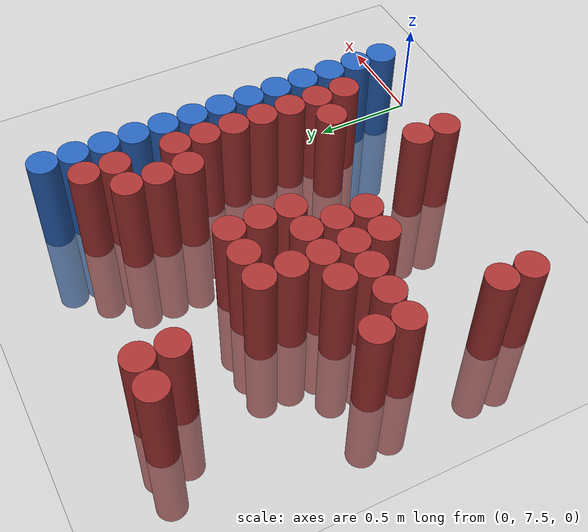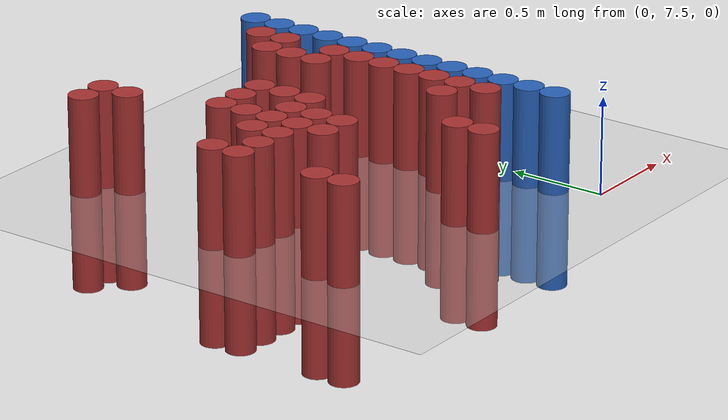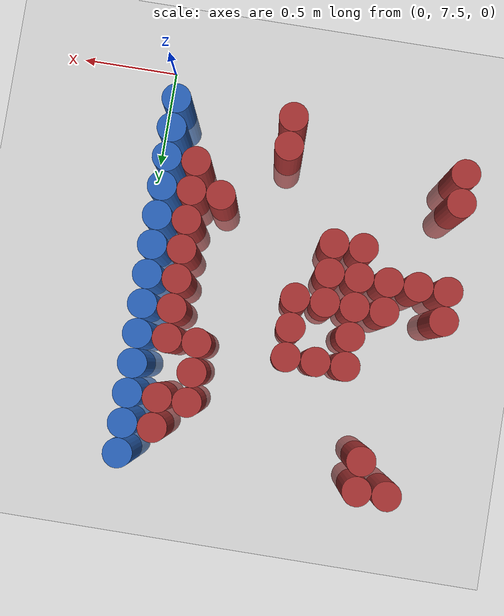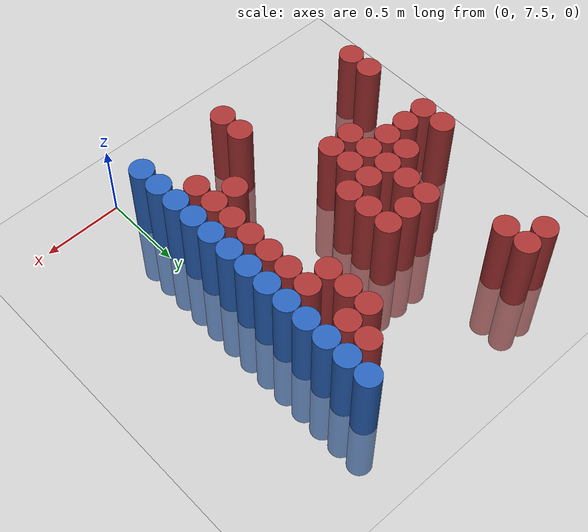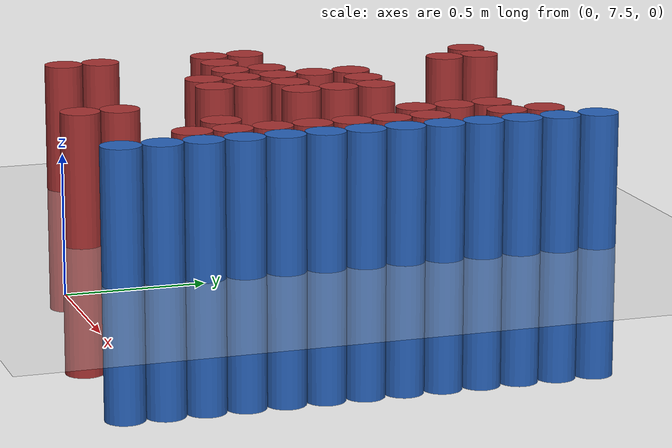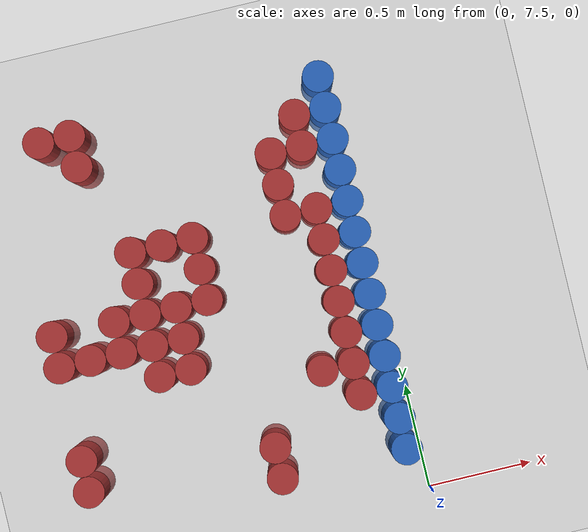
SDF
<sdf version="1.6">
 <world name="default">
  <model name="ground_plane">
   <static>1</static>
   <link name="link">
    <collision name="collision">
     <geometry><plane><normal>0 0 1</normal><size>100 100</size></plane></geometry>
     <surface><friction><ode><mu>100</mu><mu2>50</mu2></ode></friction></surface>
    </collision>
    <visual name="visual">
     <cast_shadows>0</cast_shadows>
     <geometry><plane><normal>0 0 1</normal><size>100 100</size></plane></geometry>
     <material>
      <script><uri>file://media/materials/scripts/gazebo.material</uri><name>Gazebo/Grey</name></script>
     </material>
    </visual>
   </link>
  </model>
  <model name="unit_cylinder_228">
   <static>1</static>
   <pose>-1.575000 7.875000 0.000000 0.000000 0.000000 0.000000</pose>
   <link name="link">
    <inertial>
     <mass>1</mass>
     <inertia><ixx>0.145833</ixx><ixy>0</ixy><ixz>0</ixz><iyy>0.145833</iyy><iyz>0</iyz><izz>0.125</izz></inertia>
    </inertial>
    <collision name="collision">
     <geometry><cylinder><radius>0.075000</radius><length>1</length></cylinder></geometry>
    </collision>
    <visual name="visual">
     <geometry><cylinder><radius>0.075000</radius><length>1</length></cylinder></geometry>
     <material>
      <ambient>0.648000 0.192000 0.192000 1</ambient>
      <diffuse>0.648000 0.192000 0.192000 1</diffuse>
     </material>
     <material>
      <script><name>Gazebo/Grey</name><uri>file://media/materials/scripts/gazebo.material</uri></script>
     </material>
    </visual>
   </link>
  </model>
  <model name="unit_cylinder_229">
   <static>1</static>
   <pose>-1.575000 8.025000 0.000000 0.000000 0.000000 0.000000</pose>
   <link name="link">
    <inertial>
     <mass>1</mass>
     <inertia><ixx>0.145833</ixx><ixy>0</ixy><ixz>0</ixz><iyy>0.145833</iyy><iyz>0</iyz><izz>0.125</izz></inertia>
    </inertial>
    <collision name="collision">
     <geometry><cylinder><radius>0.075000</radius><length>1</length></cylinder></geometry>
    </collision>
    <visual name="visual">
     <geometry><cylinder><radius>0.075000</radius><length>1</length></cylinder></geometry>
     <material>
      <ambient>0.648000 0.192000 0.192000 1</ambient>
      <diffuse>0.648000 0.192000 0.192000 1</diffuse>
     </material>
     <material>
      <script><name>Gazebo/Grey</name><uri>file://media/materials/scripts/gazebo.material</uri></script>
     </material>
    </visual>
   </link>
  </model>
  <model name="unit_cylinder_230">
   <static>1</static>
   <pose>-1.575000 8.475000 0.000000 0.000000 0.000000 0.000000</pose>
   <link name="link">
    <inertial>
     <mass>1</mass>
     <inertia><ixx>0.145833</ixx><ixy>0</ixy><ixz>0</ixz><iyy>0.145833</iyy><iyz>0</iyz><izz>0.125</izz></inertia>
    </inertial>
    <collision name="collision">
     <geometry><cylinder><radius>0.075000</radius><length>1</length></cylinder></geometry>
    </collision>
    <visual name="visual">
     <geometry><cylinder><radius>0.075000</radius><length>1</length></cylinder></geometry>
     <material>
      <ambient>0.648000 0.192000 0.192000 1</ambient>
      <diffuse>0.648000 0.192000 0.192000 1</diffuse>
     </material>
     <material>
      <script><name>Gazebo/Grey</name><uri>file://media/materials/scripts/gazebo.material</uri></script>
     </material>
    </visual>
   </link>
  </model>
  <model name="unit_cylinder_231">
   <static>1</static>
   <pose>-1.575000 8.625000 0.000000 0.000000 0.000000 0.000000</pose>
   <link name="link">
    <inertial>
     <mass>1</mass>
     <inertia><ixx>0.145833</ixx><ixy>0</ixy><ixz>0</ixz><iyy>0.145833</iyy><iyz>0</iyz><izz>0.125</izz></inertia>
    </inertial>
    <collision name="collision">
     <geometry><cylinder><radius>0.075000</radius><length>1</length></cylinder></geometry>
    </collision>
    <visual name="visual">
     <geometry><cylinder><radius>0.075000</radius><length>1</length></cylinder></geometry>
     <material>
      <ambient>0.648000 0.192000 0.192000 1</ambient>
      <diffuse>0.648000 0.192000 0.192000 1</diffuse>
     </material>
     <material>
      <script><name>Gazebo/Grey</name><uri>file://media/materials/scripts/gazebo.material</uri></script>
     </material>
    </visual>
   </link>
  </model>
  <model name="unit_cylinder_236">
   <static>1</static>
   <pose>-1.425000 8.475000 0.000000 0.000000 0.000000 0.000000</pose>
   <link name="link">
    <inertial>
     <mass>1</mass>
     <inertia><ixx>0.145833</ixx><ixy>0</ixy><ixz>0</ixz><iyy>0.145833</iyy><iyz>0</iyz><izz>0.125</izz></inertia>
    </inertial>
    <collision name="collision">
     <geometry><cylinder><radius>0.075000</radius><length>1</length></cylinder></geometry>
    </collision>
    <visual name="visual">
     <geometry><cylinder><radius>0.075000</radius><length>1</length></cylinder></geometry>
     <material>
      <ambient>0.648000 0.192000 0.192000 1</ambient>
      <diffuse>0.648000 0.192000 0.192000 1</diffuse>
     </material>
     <material>
      <script><name>Gazebo/Grey</name><uri>file://media/materials/scripts/gazebo.material</uri></script>
     </material>
    </visual>
   </link>
  </model>
  <model name="unit_cylinder_237">
   <static>1</static>
   <pose>-1.425000 9.525000 0.000000 0.000000 0.000000 0.000000</pose>
   <link name="link">
    <inertial>
     <mass>1</mass>
     <inertia><ixx>0.145833</ixx><ixy>0</ixy><ixz>0</ixz><iyy>0.145833</iyy><iyz>0</iyz><izz>0.125</izz></inertia>
    </inertial>
    <collision name="collision">
     <geometry><cylinder><radius>0.075000</radius><length>1</length></cylinder></geometry>
    </collision>
    <visual name="visual">
     <geometry><cylinder><radius>0.075000</radius><length>1</length></cylinder></geometry>
     <material>
      <ambient>0.648000 0.192000 0.192000 1</ambient>
      <diffuse>0.648000 0.192000 0.192000 1</diffuse>
     </material>
     <material>
      <script><name>Gazebo/Grey</name><uri>file://media/materials/scripts/gazebo.material</uri></script>
     </material>
    </visual>
   </link>
  </model>
  <model name="unit_cylinder_242">
   <static>1</static>
   <pose>-1.275000 8.475000 0.000000 0.000000 0.000000 0.000000</pose>
   <link name="link">
    <inertial>
     <mass>1</mass>
     <inertia><ixx>0.145833</ixx><ixy>0</ixy><ixz>0</ixz><iyy>0.145833</iyy><iyz>0</iyz><izz>0.125</izz></inertia>
    </inertial>
    <collision name="collision">
     <geometry><cylinder><radius>0.075000</radius><length>1</length></cylinder></geometry>
    </collision>
    <visual name="visual">
     <geometry><cylinder><radius>0.075000</radius><length>1</length></cylinder></geometry>
     <material>
      <ambient>0.648000 0.192000 0.192000 1</ambient>
      <diffuse>0.648000 0.192000 0.192000 1</diffuse>
     </material>
     <material>
      <script><name>Gazebo/Grey</name><uri>file://media/materials/scripts/gazebo.material</uri></script>
     </material>
    </visual>
   </link>
  </model>
  <model name="unit_cylinder_243">
   <static>1</static>
   <pose>-1.275000 8.625000 0.000000 0.000000 0.000000 0.000000</pose>
   <link name="link">
    <inertial>
     <mass>1</mass>
     <inertia><ixx>0.145833</ixx><ixy>0</ixy><ixz>0</ixz><iyy>0.145833</iyy><iyz>0</iyz><izz>0.125</izz></inertia>
    </inertial>
    <collision name="collision">
     <geometry><cylinder><radius>0.075000</radius><length>1</length></cylinder></geometry>
    </collision>
    <visual name="visual">
     <geometry><cylinder><radius>0.075000</radius><length>1</length></cylinder></geometry>
     <material>
      <ambient>0.648000 0.192000 0.192000 1</ambient>
      <diffuse>0.648000 0.192000 0.192000 1</diffuse>
     </material>
     <material>
      <script><name>Gazebo/Grey</name><uri>file://media/materials/scripts/gazebo.material</uri></script>
     </material>
    </visual>
   </link>
  </model>
  <model name="unit_cylinder_244">
   <static>1</static>
   <pose>-1.275000 9.375000 0.000000 0.000000 0.000000 0.000000</pose>
   <link name="link">
    <inertial>
     <mass>1</mass>
     <inertia><ixx>0.145833</ixx><ixy>0</ixy><ixz>0</ixz><iyy>0.145833</iyy><iyz>0</iyz><izz>0.125</izz></inertia>
    </inertial>
    <collision name="collision">
     <geometry><cylinder><radius>0.075000</radius><length>1</length></cylinder></geometry>
    </collision>
    <visual name="visual">
     <geometry><cylinder><radius>0.075000</radius><length>1</length></cylinder></geometry>
     <material>
      <ambient>0.648000 0.192000 0.192000 1</ambient>
      <diffuse>0.648000 0.192000 0.192000 1</diffuse>
     </material>
     <material>
      <script><name>Gazebo/Grey</name><uri>file://media/materials/scripts/gazebo.material</uri></script>
     </material>
    </visual>
   </link>
  </model>
  <model name="unit_cylinder_245">
   <static>1</static>
   <pose>-1.275000 9.525000 0.000000 0.000000 0.000000 0.000000</pose>
   <link name="link">
    <inertial>
     <mass>1</mass>
     <inertia><ixx>0.145833</ixx><ixy>0</ixy><ixz>0</ixz><iyy>0.145833</iyy><iyz>0</iyz><izz>0.125</izz></inertia>
    </inertial>
    <collision name="collision">
     <geometry><cylinder><radius>0.075000</radius><length>1</length></cylinder></geometry>
    </collision>
    <visual name="visual">
     <geometry><cylinder><radius>0.075000</radius><length>1</length></cylinder></geometry>
     <material>
      <ambient>0.648000 0.192000 0.192000 1</ambient>
      <diffuse>0.648000 0.192000 0.192000 1</diffuse>
     </material>
     <material>
      <script><name>Gazebo/Grey</name><uri>file://media/materials/scripts/gazebo.material</uri></script>
     </material>
    </visual>
   </link>
  </model>
  <model name="unit_cylinder_252">
   <static>1</static>
   <pose>-1.125000 8.325000 0.000000 0.000000 0.000000 0.000000</pose>
   <link name="link">
    <inertial>
     <mass>1</mass>
     <inertia><ixx>0.145833</ixx><ixy>0</ixy><ixz>0</ixz><iyy>0.145833</iyy><iyz>0</iyz><izz>0.125</izz></inertia>
    </inertial>
    <collision name="collision">
     <geometry><cylinder><radius>0.075000</radius><length>1</length></cylinder></geometry>
    </collision>
    <visual name="visual">
     <geometry><cylinder><radius>0.075000</radius><length>1</length></cylinder></geometry>
     <material>
      <ambient>0.648000 0.192000 0.192000 1</ambient>
      <diffuse>0.648000 0.192000 0.192000 1</diffuse>
     </material>
     <material>
      <script><name>Gazebo/Grey</name><uri>file://media/materials/scripts/gazebo.material</uri></script>
     </material>
    </visual>
   </link>
  </model>
  <model name="unit_cylinder_253">
   <static>1</static>
   <pose>-1.125000 8.475000 0.000000 0.000000 0.000000 0.000000</pose>
   <link name="link">
    <inertial>
     <mass>1</mass>
     <inertia><ixx>0.145833</ixx><ixy>0</ixy><ixz>0</ixz><iyy>0.145833</iyy><iyz>0</iyz><izz>0.125</izz></inertia>
    </inertial>
    <collision name="collision">
     <geometry><cylinder><radius>0.075000</radius><length>1</length></cylinder></geometry>
    </collision>
    <visual name="visual">
     <geometry><cylinder><radius>0.075000</radius><length>1</length></cylinder></geometry>
     <material>
      <ambient>0.648000 0.192000 0.192000 1</ambient>
      <diffuse>0.648000 0.192000 0.192000 1</diffuse>
     </material>
     <material>
      <script><name>Gazebo/Grey</name><uri>file://media/materials/scripts/gazebo.material</uri></script>
     </material>
    </visual>
   </link>
  </model>
  <model name="unit_cylinder_254">
   <static>1</static>
   <pose>-1.125000 8.625000 0.000000 0.000000 0.000000 0.000000</pose>
   <link name="link">
    <inertial>
     <mass>1</mass>
     <inertia><ixx>0.145833</ixx><ixy>0</ixy><ixz>0</ixz><iyy>0.145833</iyy><iyz>0</iyz><izz>0.125</izz></inertia>
    </inertial>
    <collision name="collision">
     <geometry><cylinder><radius>0.075000</radius><length>1</length></cylinder></geometry>
    </collision>
    <visual name="visual">
     <geometry><cylinder><radius>0.075000</radius><length>1</length></cylinder></geometry>
     <material>
      <ambient>0.648000 0.192000 0.192000 1</ambient>
      <diffuse>0.648000 0.192000 0.192000 1</diffuse>
     </material>
     <material>
      <script><name>Gazebo/Grey</name><uri>file://media/materials/scripts/gazebo.material</uri></script>
     </material>
    </visual>
   </link>
  </model>
  <model name="unit_cylinder_255">
   <static>1</static>
   <pose>-1.125000 8.775000 0.000000 0.000000 0.000000 0.000000</pose>
   <link name="link">
    <inertial>
     <mass>1</mass>
     <inertia><ixx>0.145833</ixx><ixy>0</ixy><ixz>0</ixz><iyy>0.145833</iyy><iyz>0</iyz><izz>0.125</izz></inertia>
    </inertial>
    <collision name="collision">
     <geometry><cylinder><radius>0.075000</radius><length>1</length></cylinder></geometry>
    </collision>
    <visual name="visual">
     <geometry><cylinder><radius>0.075000</radius><length>1</length></cylinder></geometry>
     <material>
      <ambient>0.648000 0.192000 0.192000 1</ambient>
      <diffuse>0.648000 0.192000 0.192000 1</diffuse>
     </material>
     <material>
      <script><name>Gazebo/Grey</name><uri>file://media/materials/scripts/gazebo.material</uri></script>
     </material>
    </visual>
   </link>
  </model>
  <model name="unit_cylinder_256">
   <static>1</static>
   <pose>-1.125000 8.925000 0.000000 0.000000 0.000000 0.000000</pose>
   <link name="link">
    <inertial>
     <mass>1</mass>
     <inertia><ixx>0.145833</ixx><ixy>0</ixy><ixz>0</ixz><iyy>0.145833</iyy><iyz>0</iyz><izz>0.125</izz></inertia>
    </inertial>
    <collision name="collision">
     <geometry><cylinder><radius>0.075000</radius><length>1</length></cylinder></geometry>
    </collision>
    <visual name="visual">
     <geometry><cylinder><radius>0.075000</radius><length>1</length></cylinder></geometry>
     <material>
      <ambient>0.648000 0.192000 0.192000 1</ambient>
      <diffuse>0.648000 0.192000 0.192000 1</diffuse>
     </material>
     <material>
      <script><name>Gazebo/Grey</name><uri>file://media/materials/scripts/gazebo.material</uri></script>
     </material>
    </visual>
   </link>
  </model>
  <model name="unit_cylinder_267">
   <static>1</static>
   <pose>-0.975000 8.325000 0.000000 0.000000 0.000000 0.000000</pose>
   <link name="link">
    <inertial>
     <mass>1</mass>
     <inertia><ixx>0.145833</ixx><ixy>0</ixy><ixz>0</ixz><iyy>0.145833</iyy><iyz>0</iyz><izz>0.125</izz></inertia>
    </inertial>
    <collision name="collision">
     <geometry><cylinder><radius>0.075000</radius><length>1</length></cylinder></geometry>
    </collision>
    <visual name="visual">
     <geometry><cylinder><radius>0.075000</radius><length>1</length></cylinder></geometry>
     <material>
      <ambient>0.648000 0.192000 0.192000 1</ambient>
      <diffuse>0.648000 0.192000 0.192000 1</diffuse>
     </material>
     <material>
      <script><name>Gazebo/Grey</name><uri>file://media/materials/scripts/gazebo.material</uri></script>
     </material>
    </visual>
   </link>
  </model>
  <model name="unit_cylinder_268">
   <static>1</static>
   <pose>-0.975000 8.475000 0.000000 0.000000 0.000000 0.000000</pose>
   <link name="link">
    <inertial>
     <mass>1</mass>
     <inertia><ixx>0.145833</ixx><ixy>0</ixy><ixz>0</ixz><iyy>0.145833</iyy><iyz>0</iyz><izz>0.125</izz></inertia>
    </inertial>
    <collision name="collision">
     <geometry><cylinder><radius>0.075000</radius><length>1</length></cylinder></geometry>
    </collision>
    <visual name="visual">
     <geometry><cylinder><radius>0.075000</radius><length>1</length></cylinder></geometry>
     <material>
      <ambient>0.648000 0.192000 0.192000 1</ambient>
      <diffuse>0.648000 0.192000 0.192000 1</diffuse>
     </material>
     <material>
      <script><name>Gazebo/Grey</name><uri>file://media/materials/scripts/gazebo.material</uri></script>
     </material>
    </visual>
   </link>
  </model>
  <model name="unit_cylinder_269">
   <static>1</static>
   <pose>-0.975000 8.625000 0.000000 0.000000 0.000000 0.000000</pose>
   <link name="link">
    <inertial>
     <mass>1</mass>
     <inertia><ixx>0.145833</ixx><ixy>0</ixy><ixz>0</ixz><iyy>0.145833</iyy><iyz>0</iyz><izz>0.125</izz></inertia>
    </inertial>
    <collision name="collision">
     <geometry><cylinder><radius>0.075000</radius><length>1</length></cylinder></geometry>
    </collision>
    <visual name="visual">
     <geometry><cylinder><radius>0.075000</radius><length>1</length></cylinder></geometry>
     <material>
      <ambient>0.648000 0.192000 0.192000 1</ambient>
      <diffuse>0.648000 0.192000 0.192000 1</diffuse>
     </material>
     <material>
      <script><name>Gazebo/Grey</name><uri>file://media/materials/scripts/gazebo.material</uri></script>
     </material>
    </visual>
   </link>
  </model>
  <model name="unit_cylinder_270">
   <static>1</static>
   <pose>-0.975000 8.925000 0.000000 0.000000 0.000000 0.000000</pose>
   <link name="link">
    <inertial>
     <mass>1</mass>
     <inertia><ixx>0.145833</ixx><ixy>0</ixy><ixz>0</ixz><iyy>0.145833</iyy><iyz>0</iyz><izz>0.125</izz></inertia>
    </inertial>
    <collision name="collision">
     <geometry><cylinder><radius>0.075000</radius><length>1</length></cylinder></geometry>
    </collision>
    <visual name="visual">
     <geometry><cylinder><radius>0.075000</radius><length>1</length></cylinder></geometry>
     <material>
      <ambient>0.648000 0.192000 0.192000 1</ambient>
      <diffuse>0.648000 0.192000 0.192000 1</diffuse>
     </material>
     <material>
      <script><name>Gazebo/Grey</name><uri>file://media/materials/scripts/gazebo.material</uri></script>
     </material>
    </visual>
   </link>
  </model>
  <model name="unit_cylinder_278">
   <static>1</static>
   <pose>-0.825000 8.625000 0.000000 0.000000 0.000000 0.000000</pose>
   <link name="link">
    <inertial>
     <mass>1</mass>
     <inertia><ixx>0.145833</ixx><ixy>0</ixy><ixz>0</ixz><iyy>0.145833</iyy><iyz>0</iyz><izz>0.125</izz></inertia>
    </inertial>
    <collision name="collision">
     <geometry><cylinder><radius>0.075000</radius><length>1</length></cylinder></geometry>
    </collision>
    <visual name="visual">
     <geometry><cylinder><radius>0.075000</radius><length>1</length></cylinder></geometry>
     <material>
      <ambient>0.648000 0.192000 0.192000 1</ambient>
      <diffuse>0.648000 0.192000 0.192000 1</diffuse>
     </material>
     <material>
      <script><name>Gazebo/Grey</name><uri>file://media/materials/scripts/gazebo.material</uri></script>
     </material>
    </visual>
   </link>
  </model>
  <model name="unit_cylinder_279">
   <static>1</static>
   <pose>-0.825000 8.775000 0.000000 0.000000 0.000000 0.000000</pose>
   <link name="link">
    <inertial>
     <mass>1</mass>
     <inertia><ixx>0.145833</ixx><ixy>0</ixy><ixz>0</ixz><iyy>0.145833</iyy><iyz>0</iyz><izz>0.125</izz></inertia>
    </inertial>
    <collision name="collision">
     <geometry><cylinder><radius>0.075000</radius><length>1</length></cylinder></geometry>
    </collision>
    <visual name="visual">
     <geometry><cylinder><radius>0.075000</radius><length>1</length></cylinder></geometry>
     <material>
      <ambient>0.648000 0.192000 0.192000 1</ambient>
      <diffuse>0.648000 0.192000 0.192000 1</diffuse>
     </material>
     <material>
      <script><name>Gazebo/Grey</name><uri>file://media/materials/scripts/gazebo.material</uri></script>
     </material>
    </visual>
   </link>
  </model>
  <model name="unit_cylinder_280">
   <static>1</static>
   <pose>-0.825000 8.925000 0.000000 0.000000 0.000000 0.000000</pose>
   <link name="link">
    <inertial>
     <mass>1</mass>
     <inertia><ixx>0.145833</ixx><ixy>0</ixy><ixz>0</ixz><iyy>0.145833</iyy><iyz>0</iyz><izz>0.125</izz></inertia>
    </inertial>
    <collision name="collision">
     <geometry><cylinder><radius>0.075000</radius><length>1</length></cylinder></geometry>
    </collision>
    <visual name="visual">
     <geometry><cylinder><radius>0.075000</radius><length>1</length></cylinder></geometry>
     <material>
      <ambient>0.648000 0.192000 0.192000 1</ambient>
      <diffuse>0.648000 0.192000 0.192000 1</diffuse>
     </material>
     <material>
      <script><name>Gazebo/Grey</name><uri>file://media/materials/scripts/gazebo.material</uri></script>
     </material>
    </visual>
   </link>
  </model>
  <model name="unit_cylinder_287">
   <static>1</static>
   <pose>-0.675000 7.725000 0.000000 0.000000 0.000000 0.000000</pose>
   <link name="link">
    <inertial>
     <mass>1</mass>
     <inertia><ixx>0.145833</ixx><ixy>0</ixy><ixz>0</ixz><iyy>0.145833</iyy><iyz>0</iyz><izz>0.125</izz></inertia>
    </inertial>
    <collision name="collision">
     <geometry><cylinder><radius>0.075000</radius><length>1</length></cylinder></geometry>
    </collision>
    <visual name="visual">
     <geometry><cylinder><radius>0.075000</radius><length>1</length></cylinder></geometry>
     <material>
      <ambient>0.648000 0.192000 0.192000 1</ambient>
      <diffuse>0.648000 0.192000 0.192000 1</diffuse>
     </material>
     <material>
      <script><name>Gazebo/Grey</name><uri>file://media/materials/scripts/gazebo.material</uri></script>
     </material>
    </visual>
   </link>
  </model>
  <model name="unit_cylinder_288">
   <static>1</static>
   <pose>-0.675000 7.875000 0.000000 0.000000 0.000000 0.000000</pose>
   <link name="link">
    <inertial>
     <mass>1</mass>
     <inertia><ixx>0.145833</ixx><ixy>0</ixy><ixz>0</ixz><iyy>0.145833</iyy><iyz>0</iyz><izz>0.125</izz></inertia>
    </inertial>
    <collision name="collision">
     <geometry><cylinder><radius>0.075000</radius><length>1</length></cylinder></geometry>
    </collision>
    <visual name="visual">
     <geometry><cylinder><radius>0.075000</radius><length>1</length></cylinder></geometry>
     <material>
      <ambient>0.648000 0.192000 0.192000 1</ambient>
      <diffuse>0.648000 0.192000 0.192000 1</diffuse>
     </material>
     <material>
      <script><name>Gazebo/Grey</name><uri>file://media/materials/scripts/gazebo.material</uri></script>
     </material>
    </visual>
   </link>
  </model>
  <model name="unit_cylinder_296">
   <static>1</static>
   <pose>-0.375000 8.175000 0.000000 0.000000 0.000000 0.000000</pose>
   <link name="link">
    <inertial>
     <mass>1</mass>
     <inertia><ixx>0.145833</ixx><ixy>0</ixy><ixz>0</ixz><iyy>0.145833</iyy><iyz>0</iyz><izz>0.125</izz></inertia>
    </inertial>
    <collision name="collision">
     <geometry><cylinder><radius>0.075000</radius><length>1</length></cylinder></geometry>
    </collision>
    <visual name="visual">
     <geometry><cylinder><radius>0.075000</radius><length>1</length></cylinder></geometry>
     <material>
      <ambient>0.648000 0.192000 0.192000 1</ambient>
      <diffuse>0.648000 0.192000 0.192000 1</diffuse>
     </material>
     <material>
      <script><name>Gazebo/Grey</name><uri>file://media/materials/scripts/gazebo.material</uri></script>
     </material>
    </visual>
   </link>
  </model>
  <model name="unit_cylinder_297">
   <static>1</static>
   <pose>-0.375000 8.925000 0.000000 0.000000 0.000000 0.000000</pose>
   <link name="link">
    <inertial>
     <mass>1</mass>
     <inertia><ixx>0.145833</ixx><ixy>0</ixy><ixz>0</ixz><iyy>0.145833</iyy><iyz>0</iyz><izz>0.125</izz></inertia>
    </inertial>
    <collision name="collision">
     <geometry><cylinder><radius>0.075000</radius><length>1</length></cylinder></geometry>
    </collision>
    <visual name="visual">
     <geometry><cylinder><radius>0.075000</radius><length>1</length></cylinder></geometry>
     <material>
      <ambient>0.648000 0.192000 0.192000 1</ambient>
      <diffuse>0.648000 0.192000 0.192000 1</diffuse>
     </material>
     <material>
      <script><name>Gazebo/Grey</name><uri>file://media/materials/scripts/gazebo.material</uri></script>
     </material>
    </visual>
   </link>
  </model>
  <model name="unit_cylinder_298">
   <static>1</static>
   <pose>-0.375000 9.075000 0.000000 0.000000 0.000000 0.000000</pose>
   <link name="link">
    <inertial>
     <mass>1</mass>
     <inertia><ixx>0.145833</ixx><ixy>0</ixy><ixz>0</ixz><iyy>0.145833</iyy><iyz>0</iyz><izz>0.125</izz></inertia>
    </inertial>
    <collision name="collision">
     <geometry><cylinder><radius>0.075000</radius><length>1</length></cylinder></geometry>
    </collision>
    <visual name="visual">
     <geometry><cylinder><radius>0.075000</radius><length>1</length></cylinder></geometry>
     <material>
      <ambient>0.648000 0.192000 0.192000 1</ambient>
      <diffuse>0.648000 0.192000 0.192000 1</diffuse>
     </material>
     <material>
      <script><name>Gazebo/Grey</name><uri>file://media/materials/scripts/gazebo.material</uri></script>
     </material>
    </visual>
   </link>
  </model>
  <model name="unit_cylinder_299">
   <static>1</static>
   <pose>-0.375000 9.225000 0.000000 0.000000 0.000000 0.000000</pose>
   <link name="link">
    <inertial>
     <mass>1</mass>
     <inertia><ixx>0.145833</ixx><ixy>0</ixy><ixz>0</ixz><iyy>0.145833</iyy><iyz>0</iyz><izz>0.125</izz></inertia>
    </inertial>
    <collision name="collision">
     <geometry><cylinder><radius>0.075000</radius><length>1</length></cylinder></geometry>
    </collision>
    <visual name="visual">
     <geometry><cylinder><radius>0.075000</radius><length>1</length></cylinder></geometry>
     <material>
      <ambient>0.648000 0.192000 0.192000 1</ambient>
      <diffuse>0.648000 0.192000 0.192000 1</diffuse>
     </material>
     <material>
      <script><name>Gazebo/Grey</name><uri>file://media/materials/scripts/gazebo.material</uri></script>
     </material>
    </visual>
   </link>
  </model>
  <model name="unit_cylinder_311">
   <static>1</static>
   <pose>-0.225000 8.025000 0.000000 0.000000 0.000000 0.000000</pose>
   <link name="link">
    <inertial>
     <mass>1</mass>
     <inertia><ixx>0.145833</ixx><ixy>0</ixy><ixz>0</ixz><iyy>0.145833</iyy><iyz>0</iyz><izz>0.125</izz></inertia>
    </inertial>
    <collision name="collision">
     <geometry><cylinder><radius>0.075000</radius><length>1</length></cylinder></geometry>
    </collision>
    <visual name="visual">
     <geometry><cylinder><radius>0.075000</radius><length>1</length></cylinder></geometry>
     <material>
      <ambient>0.648000 0.192000 0.192000 1</ambient>
      <diffuse>0.648000 0.192000 0.192000 1</diffuse>
     </material>
     <material>
      <script><name>Gazebo/Grey</name><uri>file://media/materials/scripts/gazebo.material</uri></script>
     </material>
    </visual>
   </link>
  </model>
  <model name="unit_cylinder_312">
   <static>1</static>
   <pose>-0.225000 8.175000 0.000000 0.000000 0.000000 0.000000</pose>
   <link name="link">
    <inertial>
     <mass>1</mass>
     <inertia><ixx>0.145833</ixx><ixy>0</ixy><ixz>0</ixz><iyy>0.145833</iyy><iyz>0</iyz><izz>0.125</izz></inertia>
    </inertial>
    <collision name="collision">
     <geometry><cylinder><radius>0.075000</radius><length>1</length></cylinder></geometry>
    </collision>
    <visual name="visual">
     <geometry><cylinder><radius>0.075000</radius><length>1</length></cylinder></geometry>
     <material>
      <ambient>0.648000 0.192000 0.192000 1</ambient>
      <diffuse>0.648000 0.192000 0.192000 1</diffuse>
     </material>
     <material>
      <script><name>Gazebo/Grey</name><uri>file://media/materials/scripts/gazebo.material</uri></script>
     </material>
    </visual>
   </link>
  </model>
  <model name="unit_cylinder_313">
   <static>1</static>
   <pose>-0.225000 8.325000 0.000000 0.000000 0.000000 0.000000</pose>
   <link name="link">
    <inertial>
     <mass>1</mass>
     <inertia><ixx>0.145833</ixx><ixy>0</ixy><ixz>0</ixz><iyy>0.145833</iyy><iyz>0</iyz><izz>0.125</izz></inertia>
    </inertial>
    <collision name="collision">
     <geometry><cylinder><radius>0.075000</radius><length>1</length></cylinder></geometry>
    </collision>
    <visual name="visual">
     <geometry><cylinder><radius>0.075000</radius><length>1</length></cylinder></geometry>
     <material>
      <ambient>0.648000 0.192000 0.192000 1</ambient>
      <diffuse>0.648000 0.192000 0.192000 1</diffuse>
     </material>
     <material>
      <script><name>Gazebo/Grey</name><uri>file://media/materials/scripts/gazebo.material</uri></script>
     </material>
    </visual>
   </link>
  </model>
  <model name="unit_cylinder_314">
   <static>1</static>
   <pose>-0.225000 8.475000 0.000000 0.000000 0.000000 0.000000</pose>
   <link name="link">
    <inertial>
     <mass>1</mass>
     <inertia><ixx>0.145833</ixx><ixy>0</ixy><ixz>0</ixz><iyy>0.145833</iyy><iyz>0</iyz><izz>0.125</izz></inertia>
    </inertial>
    <collision name="collision">
     <geometry><cylinder><radius>0.075000</radius><length>1</length></cylinder></geometry>
    </collision>
    <visual name="visual">
     <geometry><cylinder><radius>0.075000</radius><length>1</length></cylinder></geometry>
     <material>
      <ambient>0.648000 0.192000 0.192000 1</ambient>
      <diffuse>0.648000 0.192000 0.192000 1</diffuse>
     </material>
     <material>
      <script><name>Gazebo/Grey</name><uri>file://media/materials/scripts/gazebo.material</uri></script>
     </material>
    </visual>
   </link>
  </model>
  <model name="unit_cylinder_315">
   <static>1</static>
   <pose>-0.225000 8.625000 0.000000 0.000000 0.000000 0.000000</pose>
   <link name="link">
    <inertial>
     <mass>1</mass>
     <inertia><ixx>0.145833</ixx><ixy>0</ixy><ixz>0</ixz><iyy>0.145833</iyy><iyz>0</iyz><izz>0.125</izz></inertia>
    </inertial>
    <collision name="collision">
     <geometry><cylinder><radius>0.075000</radius><length>1</length></cylinder></geometry>
    </collision>
    <visual name="visual">
     <geometry><cylinder><radius>0.075000</radius><length>1</length></cylinder></geometry>
     <material>
      <ambient>0.648000 0.192000 0.192000 1</ambient>
      <diffuse>0.648000 0.192000 0.192000 1</diffuse>
     </material>
     <material>
      <script><name>Gazebo/Grey</name><uri>file://media/materials/scripts/gazebo.material</uri></script>
     </material>
    </visual>
   </link>
  </model>
  <model name="unit_cylinder_316">
   <static>1</static>
   <pose>-0.225000 8.775000 0.000000 0.000000 0.000000 0.000000</pose>
   <link name="link">
    <inertial>
     <mass>1</mass>
     <inertia><ixx>0.145833</ixx><ixy>0</ixy><ixz>0</ixz><iyy>0.145833</iyy><iyz>0</iyz><izz>0.125</izz></inertia>
    </inertial>
    <collision name="collision">
     <geometry><cylinder><radius>0.075000</radius><length>1</length></cylinder></geometry>
    </collision>
    <visual name="visual">
     <geometry><cylinder><radius>0.075000</radius><length>1</length></cylinder></geometry>
     <material>
      <ambient>0.648000 0.192000 0.192000 1</ambient>
      <diffuse>0.648000 0.192000 0.192000 1</diffuse>
     </material>
     <material>
      <script><name>Gazebo/Grey</name><uri>file://media/materials/scripts/gazebo.material</uri></script>
     </material>
    </visual>
   </link>
  </model>
  <model name="unit_cylinder_317">
   <static>1</static>
   <pose>-0.225000 8.925000 0.000000 0.000000 0.000000 0.000000</pose>
   <link name="link">
    <inertial>
     <mass>1</mass>
     <inertia><ixx>0.145833</ixx><ixy>0</ixy><ixz>0</ixz><iyy>0.145833</iyy><iyz>0</iyz><izz>0.125</izz></inertia>
    </inertial>
    <collision name="collision">
     <geometry><cylinder><radius>0.075000</radius><length>1</length></cylinder></geometry>
    </collision>
    <visual name="visual">
     <geometry><cylinder><radius>0.075000</radius><length>1</length></cylinder></geometry>
     <material>
      <ambient>0.648000 0.192000 0.192000 1</ambient>
      <diffuse>0.648000 0.192000 0.192000 1</diffuse>
     </material>
     <material>
      <script><name>Gazebo/Grey</name><uri>file://media/materials/scripts/gazebo.material</uri></script>
     </material>
    </visual>
   </link>
  </model>
  <model name="unit_cylinder_318">
   <static>1</static>
   <pose>-0.225000 9.225000 0.000000 0.000000 0.000000 0.000000</pose>
   <link name="link">
    <inertial>
     <mass>1</mass>
     <inertia><ixx>0.145833</ixx><ixy>0</ixy><ixz>0</ixz><iyy>0.145833</iyy><iyz>0</iyz><izz>0.125</izz></inertia>
    </inertial>
    <collision name="collision">
     <geometry><cylinder><radius>0.075000</radius><length>1</length></cylinder></geometry>
    </collision>
    <visual name="visual">
     <geometry><cylinder><radius>0.075000</radius><length>1</length></cylinder></geometry>
     <material>
      <ambient>0.648000 0.192000 0.192000 1</ambient>
      <diffuse>0.648000 0.192000 0.192000 1</diffuse>
     </material>
     <material>
      <script><name>Gazebo/Grey</name><uri>file://media/materials/scripts/gazebo.material</uri></script>
     </material>
    </visual>
   </link>
  </model>
  <model name="unit_cylinder_319">
   <static>1</static>
   <pose>-0.225000 9.375000 0.000000 0.000000 0.000000 0.000000</pose>
   <link name="link">
    <inertial>
     <mass>1</mass>
     <inertia><ixx>0.145833</ixx><ixy>0</ixy><ixz>0</ixz><iyy>0.145833</iyy><iyz>0</iyz><izz>0.125</izz></inertia>
    </inertial>
    <collision name="collision">
     <geometry><cylinder><radius>0.075000</radius><length>1</length></cylinder></geometry>
    </collision>
    <visual name="visual">
     <geometry><cylinder><radius>0.075000</radius><length>1</length></cylinder></geometry>
     <material>
      <ambient>0.648000 0.192000 0.192000 1</ambient>
      <diffuse>0.648000 0.192000 0.192000 1</diffuse>
     </material>
     <material>
      <script><name>Gazebo/Grey</name><uri>file://media/materials/scripts/gazebo.material</uri></script>
     </material>
    </visual>
   </link>
  </model>
  <model name="unit_cylinder_337">
   <static>1</static>
   <pose>-0.075000 7.725000 0.000000 0.000000 0.000000 0.000000</pose>
   <link name="link">
    <inertial>
     <mass>1</mass>
     <inertia><ixx>0.145833</ixx><ixy>0</ixy><ixz>0</ixz><iyy>0.145833</iyy><iyz>0</iyz><izz>0.125</izz></inertia>
    </inertial>
    <collision name="collision">
     <geometry><cylinder><radius>0.075000</radius><length>1</length></cylinder></geometry>
    </collision>
    <visual name="visual">
     <geometry><cylinder><radius>0.075000</radius><length>1</length></cylinder></geometry>
     <material>
      <ambient>0.152000 0.379000 0.720000 1</ambient>
      <diffuse>0.152000 0.379000 0.720000 1</diffuse>
     </material>
     <material>
      <script><name>Gazebo/Grey</name><uri>file://media/materials/scripts/gazebo.material</uri></script>
     </material>
    </visual>
   </link>
  </model>
  <model name="unit_cylinder_338">
   <static>1</static>
   <pose>-0.075000 7.875000 0.000000 0.000000 0.000000 0.000000</pose>
   <link name="link">
    <inertial>
     <mass>1</mass>
     <inertia><ixx>0.145833</ixx><ixy>0</ixy><ixz>0</ixz><iyy>0.145833</iyy><iyz>0</iyz><izz>0.125</izz></inertia>
    </inertial>
    <collision name="collision">
     <geometry><cylinder><radius>0.075000</radius><length>1</length></cylinder></geometry>
    </collision>
    <visual name="visual">
     <geometry><cylinder><radius>0.075000</radius><length>1</length></cylinder></geometry>
     <material>
      <ambient>0.152000 0.379000 0.720000 1</ambient>
      <diffuse>0.152000 0.379000 0.720000 1</diffuse>
     </material>
     <material>
      <script><name>Gazebo/Grey</name><uri>file://media/materials/scripts/gazebo.material</uri></script>
     </material>
    </visual>
   </link>
  </model>
  <model name="unit_cylinder_339">
   <static>1</static>
   <pose>-0.075000 8.025000 0.000000 0.000000 0.000000 0.000000</pose>
   <link name="link">
    <inertial>
     <mass>1</mass>
     <inertia><ixx>0.145833</ixx><ixy>0</ixy><ixz>0</ixz><iyy>0.145833</iyy><iyz>0</iyz><izz>0.125</izz></inertia>
    </inertial>
    <collision name="collision">
     <geometry><cylinder><radius>0.075000</radius><length>1</length></cylinder></geometry>
    </collision>
    <visual name="visual">
     <geometry><cylinder><radius>0.075000</radius><length>1</length></cylinder></geometry>
     <material>
      <ambient>0.152000 0.379000 0.720000 1</ambient>
      <diffuse>0.152000 0.379000 0.720000 1</diffuse>
     </material>
     <material>
      <script><name>Gazebo/Grey</name><uri>file://media/materials/scripts/gazebo.material</uri></script>
     </material>
    </visual>
   </link>
  </model>
  <model name="unit_cylinder_340">
   <static>1</static>
   <pose>-0.075000 8.175000 0.000000 0.000000 0.000000 0.000000</pose>
   <link name="link">
    <inertial>
     <mass>1</mass>
     <inertia><ixx>0.145833</ixx><ixy>0</ixy><ixz>0</ixz><iyy>0.145833</iyy><iyz>0</iyz><izz>0.125</izz></inertia>
    </inertial>
    <collision name="collision">
     <geometry><cylinder><radius>0.075000</radius><length>1</length></cylinder></geometry>
    </collision>
    <visual name="visual">
     <geometry><cylinder><radius>0.075000</radius><length>1</length></cylinder></geometry>
     <material>
      <ambient>0.152000 0.379000 0.720000 1</ambient>
      <diffuse>0.152000 0.379000 0.720000 1</diffuse>
     </material>
     <material>
      <script><name>Gazebo/Grey</name><uri>file://media/materials/scripts/gazebo.material</uri></script>
     </material>
    </visual>
   </link>
  </model>
  <model name="unit_cylinder_341">
   <static>1</static>
   <pose>-0.075000 8.325000 0.000000 0.000000 0.000000 0.000000</pose>
   <link name="link">
    <inertial>
     <mass>1</mass>
     <inertia><ixx>0.145833</ixx><ixy>0</ixy><ixz>0</ixz><iyy>0.145833</iyy><iyz>0</iyz><izz>0.125</izz></inertia>
    </inertial>
    <collision name="collision">
     <geometry><cylinder><radius>0.075000</radius><length>1</length></cylinder></geometry>
    </collision>
    <visual name="visual">
     <geometry><cylinder><radius>0.075000</radius><length>1</length></cylinder></geometry>
     <material>
      <ambient>0.152000 0.379000 0.720000 1</ambient>
      <diffuse>0.152000 0.379000 0.720000 1</diffuse>
     </material>
     <material>
      <script><name>Gazebo/Grey</name><uri>file://media/materials/scripts/gazebo.material</uri></script>
     </material>
    </visual>
   </link>
  </model>
  <model name="unit_cylinder_342">
   <static>1</static>
   <pose>-0.075000 8.475000 0.000000 0.000000 0.000000 0.000000</pose>
   <link name="link">
    <inertial>
     <mass>1</mass>
     <inertia><ixx>0.145833</ixx><ixy>0</ixy><ixz>0</ixz><iyy>0.145833</iyy><iyz>0</iyz><izz>0.125</izz></inertia>
    </inertial>
    <collision name="collision">
     <geometry><cylinder><radius>0.075000</radius><length>1</length></cylinder></geometry>
    </collision>
    <visual name="visual">
     <geometry><cylinder><radius>0.075000</radius><length>1</length></cylinder></geometry>
     <material>
      <ambient>0.152000 0.379000 0.720000 1</ambient>
      <diffuse>0.152000 0.379000 0.720000 1</diffuse>
     </material>
     <material>
      <script><name>Gazebo/Grey</name><uri>file://media/materials/scripts/gazebo.material</uri></script>
     </material>
    </visual>
   </link>
  </model>
  <model name="unit_cylinder_343">
   <static>1</static>
   <pose>-0.075000 8.625000 0.000000 0.000000 0.000000 0.000000</pose>
   <link name="link">
    <inertial>
     <mass>1</mass>
     <inertia><ixx>0.145833</ixx><ixy>0</ixy><ixz>0</ixz><iyy>0.145833</iyy><iyz>0</iyz><izz>0.125</izz></inertia>
    </inertial>
    <collision name="collision">
     <geometry><cylinder><radius>0.075000</radius><length>1</length></cylinder></geometry>
    </collision>
    <visual name="visual">
     <geometry><cylinder><radius>0.075000</radius><length>1</length></cylinder></geometry>
     <material>
      <ambient>0.152000 0.379000 0.720000 1</ambient>
      <diffuse>0.152000 0.379000 0.720000 1</diffuse>
     </material>
     <material>
      <script><name>Gazebo/Grey</name><uri>file://media/materials/scripts/gazebo.material</uri></script>
     </material>
    </visual>
   </link>
  </model>
  <model name="unit_cylinder_344">
   <static>1</static>
   <pose>-0.075000 8.775000 0.000000 0.000000 0.000000 0.000000</pose>
   <link name="link">
    <inertial>
     <mass>1</mass>
     <inertia><ixx>0.145833</ixx><ixy>0</ixy><ixz>0</ixz><iyy>0.145833</iyy><iyz>0</iyz><izz>0.125</izz></inertia>
    </inertial>
    <collision name="collision">
     <geometry><cylinder><radius>0.075000</radius><length>1</length></cylinder></geometry>
    </collision>
    <visual name="visual">
     <geometry><cylinder><radius>0.075000</radius><length>1</length></cylinder></geometry>
     <material>
      <ambient>0.152000 0.379000 0.720000 1</ambient>
      <diffuse>0.152000 0.379000 0.720000 1</diffuse>
     </material>
     <material>
      <script><name>Gazebo/Grey</name><uri>file://media/materials/scripts/gazebo.material</uri></script>
     </material>
    </visual>
   </link>
  </model>
  <model name="unit_cylinder_345">
   <static>1</static>
   <pose>-0.075000 8.925000 0.000000 0.000000 0.000000 0.000000</pose>
   <link name="link">
    <inertial>
     <mass>1</mass>
     <inertia><ixx>0.145833</ixx><ixy>0</ixy><ixz>0</ixz><iyy>0.145833</iyy><iyz>0</iyz><izz>0.125</izz></inertia>
    </inertial>
    <collision name="collision">
     <geometry><cylinder><radius>0.075000</radius><length>1</length></cylinder></geometry>
    </collision>
    <visual name="visual">
     <geometry><cylinder><radius>0.075000</radius><length>1</length></cylinder></geometry>
     <material>
      <ambient>0.152000 0.379000 0.720000 1</ambient>
      <diffuse>0.152000 0.379000 0.720000 1</diffuse>
     </material>
     <material>
      <script><name>Gazebo/Grey</name><uri>file://media/materials/scripts/gazebo.material</uri></script>
     </material>
    </visual>
   </link>
  </model>
  <model name="unit_cylinder_346">
   <static>1</static>
   <pose>-0.075000 9.075000 0.000000 0.000000 0.000000 0.000000</pose>
   <link name="link">
    <inertial>
     <mass>1</mass>
     <inertia><ixx>0.145833</ixx><ixy>0</ixy><ixz>0</ixz><iyy>0.145833</iyy><iyz>0</iyz><izz>0.125</izz></inertia>
    </inertial>
    <collision name="collision">
     <geometry><cylinder><radius>0.075000</radius><length>1</length></cylinder></geometry>
    </collision>
    <visual name="visual">
     <geometry><cylinder><radius>0.075000</radius><length>1</length></cylinder></geometry>
     <material>
      <ambient>0.152000 0.379000 0.720000 1</ambient>
      <diffuse>0.152000 0.379000 0.720000 1</diffuse>
     </material>
     <material>
      <script><name>Gazebo/Grey</name><uri>file://media/materials/scripts/gazebo.material</uri></script>
     </material>
    </visual>
   </link>
  </model>
  <model name="unit_cylinder_347">
   <static>1</static>
   <pose>-0.075000 9.225000 0.000000 0.000000 0.000000 0.000000</pose>
   <link name="link">
    <inertial>
     <mass>1</mass>
     <inertia><ixx>0.145833</ixx><ixy>0</ixy><ixz>0</ixz><iyy>0.145833</iyy><iyz>0</iyz><izz>0.125</izz></inertia>
    </inertial>
    <collision name="collision">
     <geometry><cylinder><radius>0.075000</radius><length>1</length></cylinder></geometry>
    </collision>
    <visual name="visual">
     <geometry><cylinder><radius>0.075000</radius><length>1</length></cylinder></geometry>
     <material>
      <ambient>0.152000 0.379000 0.720000 1</ambient>
      <diffuse>0.152000 0.379000 0.720000 1</diffuse>
     </material>
     <material>
      <script><name>Gazebo/Grey</name><uri>file://media/materials/scripts/gazebo.material</uri></script>
     </material>
    </visual>
   </link>
  </model>
  <model name="unit_cylinder_348">
   <static>1</static>
   <pose>-0.075000 9.375000 0.000000 0.000000 0.000000 0.000000</pose>
   <link name="link">
    <inertial>
     <mass>1</mass>
     <inertia><ixx>0.145833</ixx><ixy>0</ixy><ixz>0</ixz><iyy>0.145833</iyy><iyz>0</iyz><izz>0.125</izz></inertia>
    </inertial>
    <collision name="collision">
     <geometry><cylinder><radius>0.075000</radius><length>1</length></cylinder></geometry>
    </collision>
    <visual name="visual">
     <geometry><cylinder><radius>0.075000</radius><length>1</length></cylinder></geometry>
     <material>
      <ambient>0.152000 0.379000 0.720000 1</ambient>
      <diffuse>0.152000 0.379000 0.720000 1</diffuse>
     </material>
     <material>
      <script><name>Gazebo/Grey</name><uri>file://media/materials/scripts/gazebo.material</uri></script>
     </material>
    </visual>
   </link>
  </model>
  <model name="unit_cylinder_349">
   <static>1</static>
   <pose>-0.075000 9.525000 0.000000 0.000000 0.000000 0.000000</pose>
   <link name="link">
    <inertial>
     <mass>1</mass>
     <inertia><ixx>0.145833</ixx><ixy>0</ixy><ixz>0</ixz><iyy>0.145833</iyy><iyz>0</iyz><izz>0.125</izz></inertia>
    </inertial>
    <collision name="collision">
     <geometry><cylinder><radius>0.075000</radius><length>1</length></cylinder></geometry>
    </collision>
    <visual name="visual">
     <geometry><cylinder><radius>0.075000</radius><length>1</length></cylinder></geometry>
     <material>
      <ambient>0.152000 0.379000 0.720000 1</ambient>
      <diffuse>0.152000 0.379000 0.720000 1</diffuse>
     </material>
     <material>
      <script><name>Gazebo/Grey</name><uri>file://media/materials/scripts/gazebo.material</uri></script>
     </material>
    </visual>
   </link>
  </model>
 </world>
</sdf>
